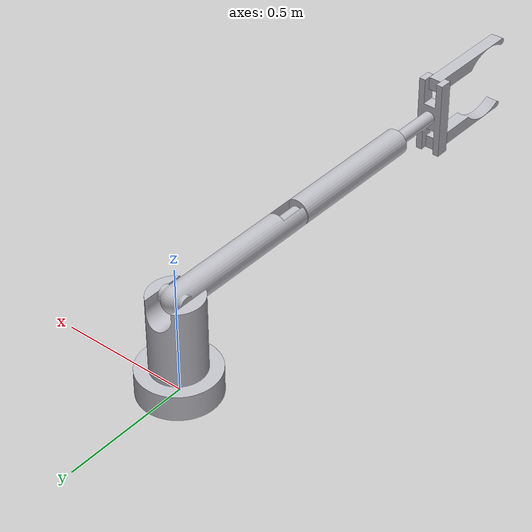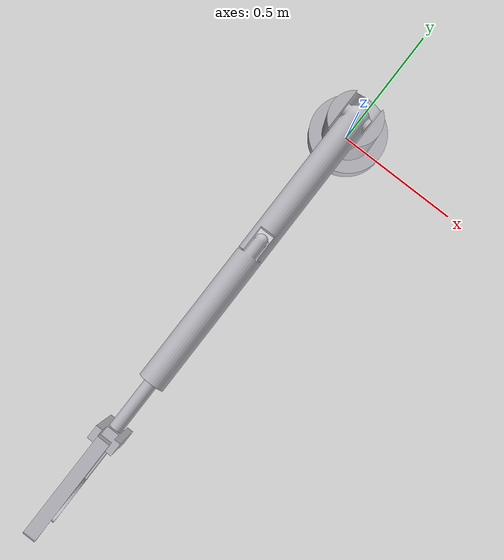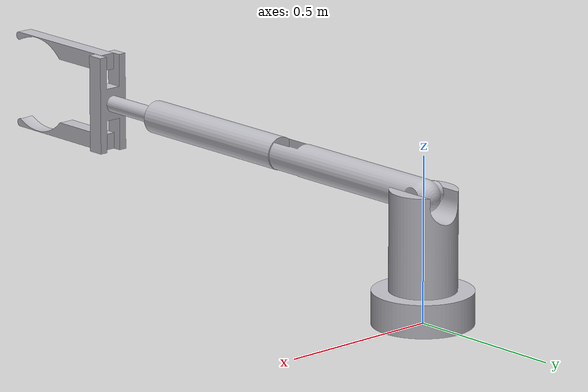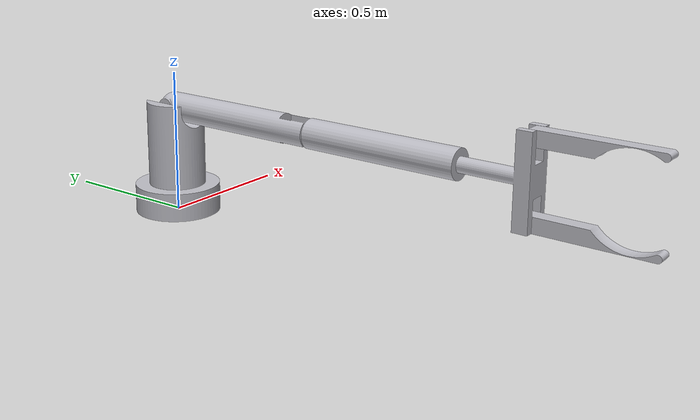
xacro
<?xml version="1.0" ?>
<robot name="roboticarm" xmlns:xacro="http://www.ros.org/wiki/xacro">

<xacro:include filename="$(find roboticarm_description)/urdf/materials.xacro" />
<xacro:include filename="$(find roboticarm_description)/urdf/roboticarm.trans" />
<xacro:include filename="$(find roboticarm_description)/urdf/roboticarm.gazebo" />
<xacro:include filename="$(find roboticarm_description)/urdf/ros2_control.xacro" />

<link name="base_link">
  <inertial>
    <origin xyz="0.0 -2.0586748800433873e-17 0.04999999999999999" rpy="0 0 0"/>
    <mass value="55.48838024402974"/>
    <inertia ixx="0.358362" iyy="0.358362" izz="0.624244" ixy="0.0" iyz="0.0" ixz="0.0"/>
  </inertial>
  <visual>
    <origin xyz="0 0 0" rpy="0 0 0"/>
    <geometry>
      <mesh filename="file://$(find roboticarm_description)/meshes/base_link.stl" scale="0.001 0.001 0.001"/>
    </geometry>
    <material name="silver"/>
  </visual>
  <collision>
    <origin xyz="0 0 0" rpy="0 0 0"/>
    <geometry>
      <mesh filename="file://$(find roboticarm_description)/meshes/base_link.stl" scale="0.001 0.001 0.001"/>
    </geometry>
  </collision>
</link>

<link name="link1_1">
  <inertial>
    <origin xyz="0.0 -3.68658301132574e-17 0.12817984130631607" rpy="0 0 0"/>
    <mass value="61.972039794975544"/>
    <inertia ixx="0.515351" iyy="0.542065" izz="0.323217" ixy="-0.0" iyz="-0.0" ixz="-0.0"/>
  </inertial>
  <visual>
    <origin xyz="-0.0 -0.0 -0.1" rpy="0 0 0"/>
    <geometry>
      <mesh filename="file://$(find roboticarm_description)/meshes/link1_1.stl" scale="0.001 0.001 0.001"/>
    </geometry>
    <material name="silver"/>
  </visual>
  <collision>
    <origin xyz="-0.0 -0.0 -0.1" rpy="0 0 0"/>
    <geometry>
      <mesh filename="file://$(find roboticarm_description)/meshes/link1_1.stl" scale="0.001 0.001 0.001"/>
    </geometry>
  </collision>
</link>

<link name="link2_1">
  <inertial>
    <origin xyz="0.00018158388170094853 -0.247988339495083 -0.004938546329411042" rpy="0 0 0"/>
    <mass value="34.81078873626538"/>
    <inertia ixx="0.982683" iyy="0.04424" izz="0.984993" ixy="0.000103" iyz="-0.000502" ixz="2e-06"/>
  </inertial>
  <visual>
    <origin xyz="0.0 -0.0 -0.385681" rpy="0 0 0"/>
    <geometry>
      <mesh filename="file://$(find roboticarm_description)/meshes/link2_1.stl" scale="0.001 0.001 0.001"/>
    </geometry>
    <material name="silver"/>
  </visual>
  <collision>
    <origin xyz="0.0 -0.0 -0.385681" rpy="0 0 0"/>
    <geometry>
      <mesh filename="file://$(find roboticarm_description)/meshes/link2_1.stl" scale="0.001 0.001 0.001"/>
    </geometry>
  </collision>
</link>

<link name="link3_1">
  <inertial>
    <origin xyz="-4.899342106494604e-07 -0.31269954712060155 -5.685348120065825e-08" rpy="0 0 0"/>
    <mass value="34.53006679976252"/>
    <inertia ixx="0.956216" iyy="0.042673" izz="0.956221" ixy="-0.0" iyz="0.0" ixz="0.0"/>
  </inertial>
  <visual>
    <origin xyz="-0.000194 0.55 -0.380685" rpy="0 0 0"/>
    <geometry>
      <mesh filename="file://$(find roboticarm_description)/meshes/link3_1.stl" scale="0.001 0.001 0.001"/>
    </geometry>
    <material name="silver"/>
  </visual>
  <collision>
    <origin xyz="-0.000194 0.55 -0.380685" rpy="0 0 0"/>
    <geometry>
      <mesh filename="file://$(find roboticarm_description)/meshes/link3_1.stl" scale="0.001 0.001 0.001"/>
    </geometry>
  </collision>
</link>

<link name="jawleft_1">
  <inertial>
    <origin xyz="0.02449947949528299 -0.1355980320849317 -0.027736234485342737" rpy="0 0 0"/>
    <mass value="4.783853485121548"/>
    <inertia ixx="0.043768" iyy="0.001987" izz="0.043713" ixy="-0.0" iyz="-0.002101" ixz="0.0"/>
  </inertial>
  <visual>
    <origin xyz="0.024806 1.3815 -0.280685" rpy="0 0 0"/>
    <geometry>
      <mesh filename="file://$(find roboticarm_description)/meshes/jawleft_1.stl" scale="0.001 0.001 0.001"/>
    </geometry>
    <material name="silver"/>
  </visual>
  <collision>
    <origin xyz="0.024806 1.3815 -0.280685" rpy="0 0 0"/>
    <geometry>
      <mesh filename="file://$(find roboticarm_description)/meshes/jawleft_1.stl" scale="0.001 0.001 0.001"/>
    </geometry>
  </collision>
</link>

<link name="jawright_1">
  <inertial>
    <origin xyz="0.02449951228673766 -0.13566098514999259 0.027751176469050842" rpy="0 0 0"/>
    <mass value="4.779455888600766"/>
    <inertia ixx="0.043954" iyy="0.001985" izz="0.0439" ixy="0.0" iyz="0.002109" ixz="-0.0"/>
  </inertial>
  <visual>
    <origin xyz="0.024806 1.3815 -0.480685" rpy="0 0 0"/>
    <geometry>
      <mesh filename="file://$(find roboticarm_description)/meshes/jawright_1.stl" scale="0.001 0.001 0.001"/>
    </geometry>
    <material name="silver"/>
  </visual>
  <collision>
    <origin xyz="0.024806 1.3815 -0.480685" rpy="0 0 0"/>
    <geometry>
      <mesh filename="file://$(find roboticarm_description)/meshes/jawright_1.stl" scale="0.001 0.001 0.001"/>
    </geometry>
  </collision>
</link>

<link name="gripper_1">
  <inertial>
    <origin xyz="-4.899342107025863e-07 -0.1897537749845668 -5.685348108963595e-08" rpy="0 0 0"/>
    <mass value="10.932687791334981"/>
    <inertia ixx="0.09277" iyy="0.05575" izz="0.055973" ixy="0.0" iyz="0.0" ixz="0.0"/>
  </inertial>
  <visual>
    <origin xyz="-0.000194 1.1565 -0.380685" rpy="0 0 0"/>
    <geometry>
      <mesh filename="file://$(find roboticarm_description)/meshes/gripper_1.stl" scale="0.001 0.001 0.001"/>
    </geometry>
    <material name="silver"/>
  </visual>
  <collision>
    <origin xyz="-0.000194 1.1565 -0.380685" rpy="0 0 0"/>
    <geometry>
      <mesh filename="file://$(find roboticarm_description)/meshes/gripper_1.stl" scale="0.001 0.001 0.001"/>
    </geometry>
  </collision>
</link>

<joint name="rev1" type="continuous">
  <origin xyz="0.0 0.0 0.1" rpy="0 0 0"/>
  <parent link="base_link"/>
  <child link="link1_1"/>
  <axis xyz="0.0 0.0 1.0"/>
</joint>

<joint name="rev2" type="revolute">
  <origin xyz="-0.0 0.0 0.285681" rpy="0 0 0"/>
  <parent link="link1_1"/>
  <child link="link2_1"/>
  <axis xyz="1.0 0.0 0.0"/>
  <limit upper="0.0" lower="-3.141593" effort="100" velocity="100"/>
</joint>

<joint name="rev3" type="revolute">
  <origin xyz="0.000194 -0.55 -0.004996" rpy="0 0 0"/>
  <parent link="link2_1"/>
  <child link="link3_1"/>
  <axis xyz="-1.0 0.0 0.0"/>
  <limit upper="1.570796" lower="-1.570796" effort="100" velocity="100"/>
</joint>

<joint name="leftjoint" type="revolute">
  <origin xyz="-0.025 -0.225 -0.1" rpy="0 0 0"/>
  <parent link="gripper_1"/>
  <child link="jawleft_1"/>
  <axis xyz="1.0 -0.0 0.0"/>
  <limit upper="0.523599" lower="-0.261799" effort="100" velocity="100"/>
</joint>

<joint name="r8joint" type="revolute">
  <origin xyz="-0.025 -0.225 0.1" rpy="0 0 0"/>
  <parent link="gripper_1"/>
  <child link="jawright_1"/>
  <axis xyz="1.0 -0.0 0.0"/>
  <limit upper="0.261799" lower="-0.523599" effort="100" velocity="100"/>
</joint>

<joint name="gripjoint" type="continuous">
  <origin xyz="0.0 -0.6065 0.0" rpy="0 0 0"/>
  <parent link="link3_1"/>
  <child link="gripper_1"/>
  <axis xyz="0.0 1.0 -0.0"/>
</joint>

</robot>

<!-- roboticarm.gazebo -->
<robot name="roboticarm" xmlns:xacro="http://www.ros.org/wiki/xacro" >

<xacro:property name="body_color" value="Gazebo/Silver" />

<gazebo>
  <plugin name="control" filename="libgazebo_ros_control.so"/>
</gazebo>
<gazebo reference="base_link">
  <material>${body_color}</material>
  <mu1>0.2</mu1>
  <mu2>0.2</mu2>
  <self_collide>true</self_collide>
  <gravity>true</gravity>
</gazebo>

<gazebo reference="link1_1">
  <material>${body_color}</material>
  <mu1>0.2</mu1>
  <mu2>0.2</mu2>
  <self_collide>true</self_collide>
</gazebo>

<gazebo reference="link2_1">
  <material>${body_color}</material>
  <mu1>0.2</mu1>
  <mu2>0.2</mu2>
  <self_collide>true</self_collide>
</gazebo>

<gazebo reference="link3_1">
  <material>${body_color}</material>
  <mu1>0.2</mu1>
  <mu2>0.2</mu2>
  <self_collide>true</self_collide>
</gazebo>

<gazebo reference="jawleft_1">
  <material>${body_color}</material>
  <mu1>0.2</mu1>
  <mu2>0.2</mu2>
  <self_collide>true</self_collide>
</gazebo>

<gazebo reference="jawright_1">
  <material>${body_color}</material>
  <mu1>0.2</mu1>
  <mu2>0.2</mu2>
  <self_collide>true</self_collide>
</gazebo>

<gazebo reference="gripper_1">
  <material>${body_color}</material>
  <mu1>0.2</mu1>
  <mu2>0.2</mu2>
  <self_collide>true</self_collide>
</gazebo>

</robot>
